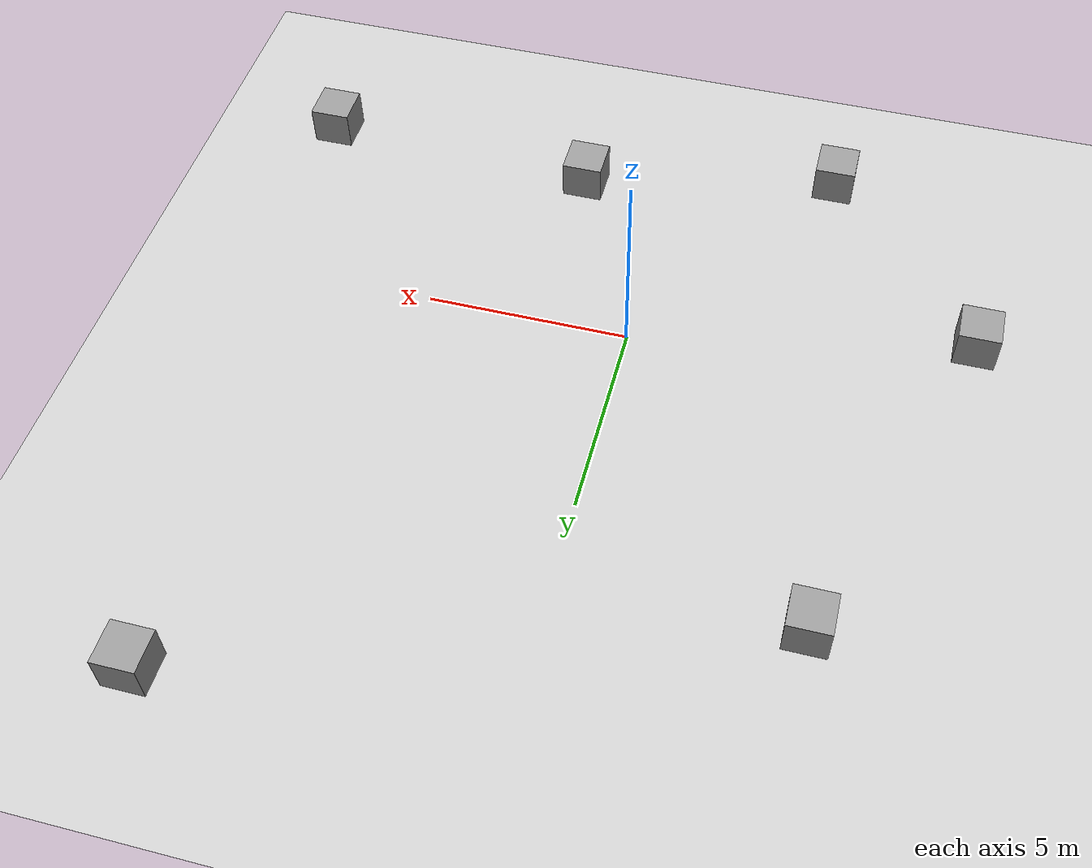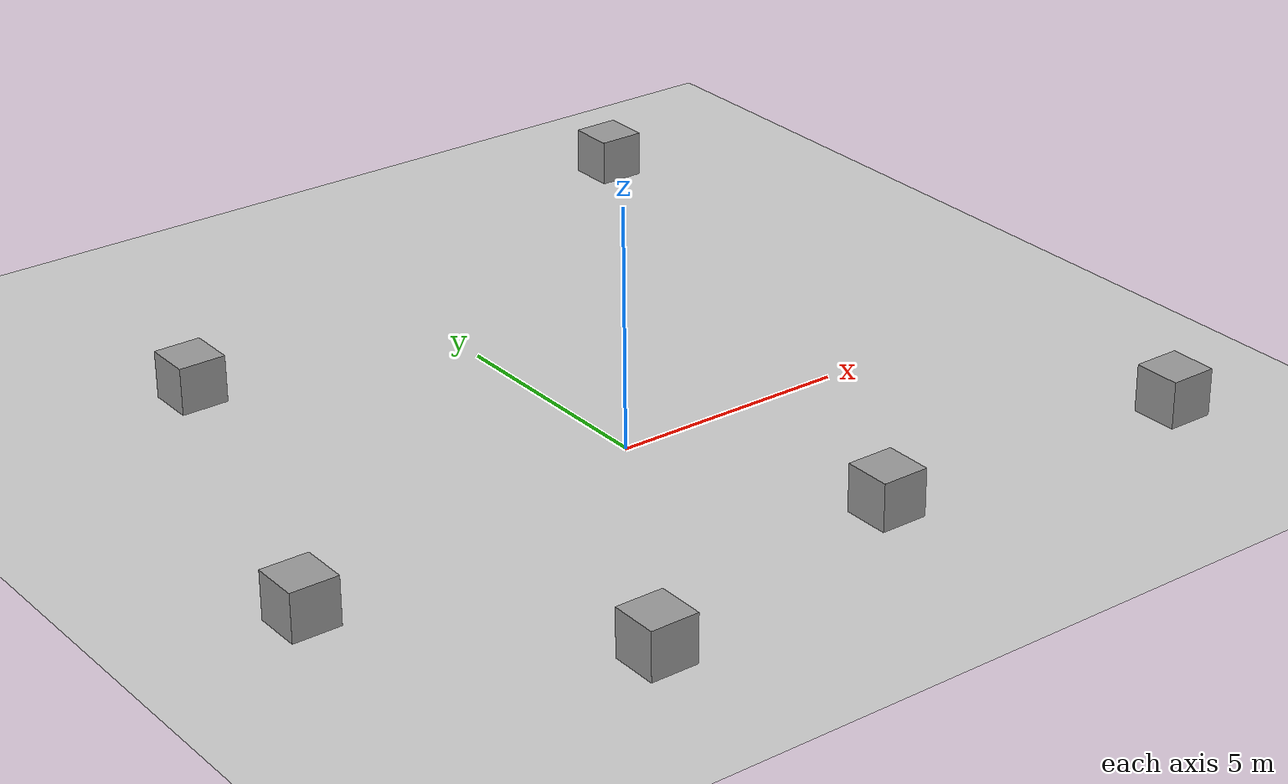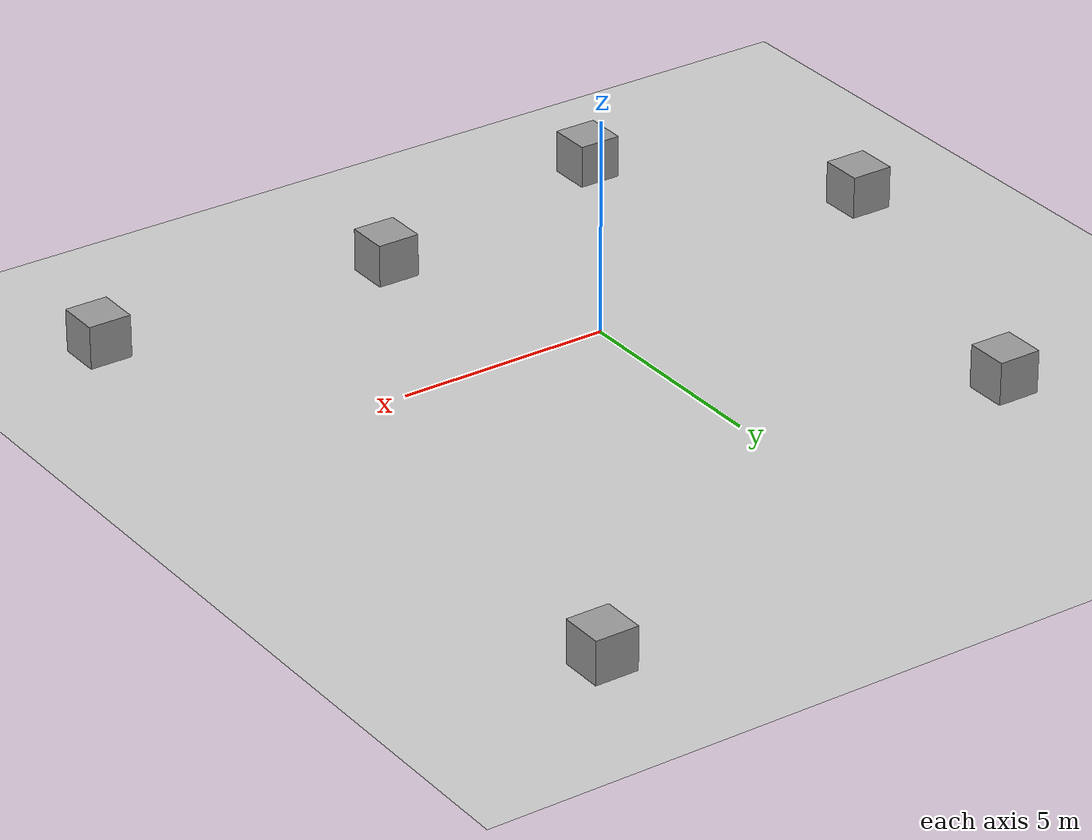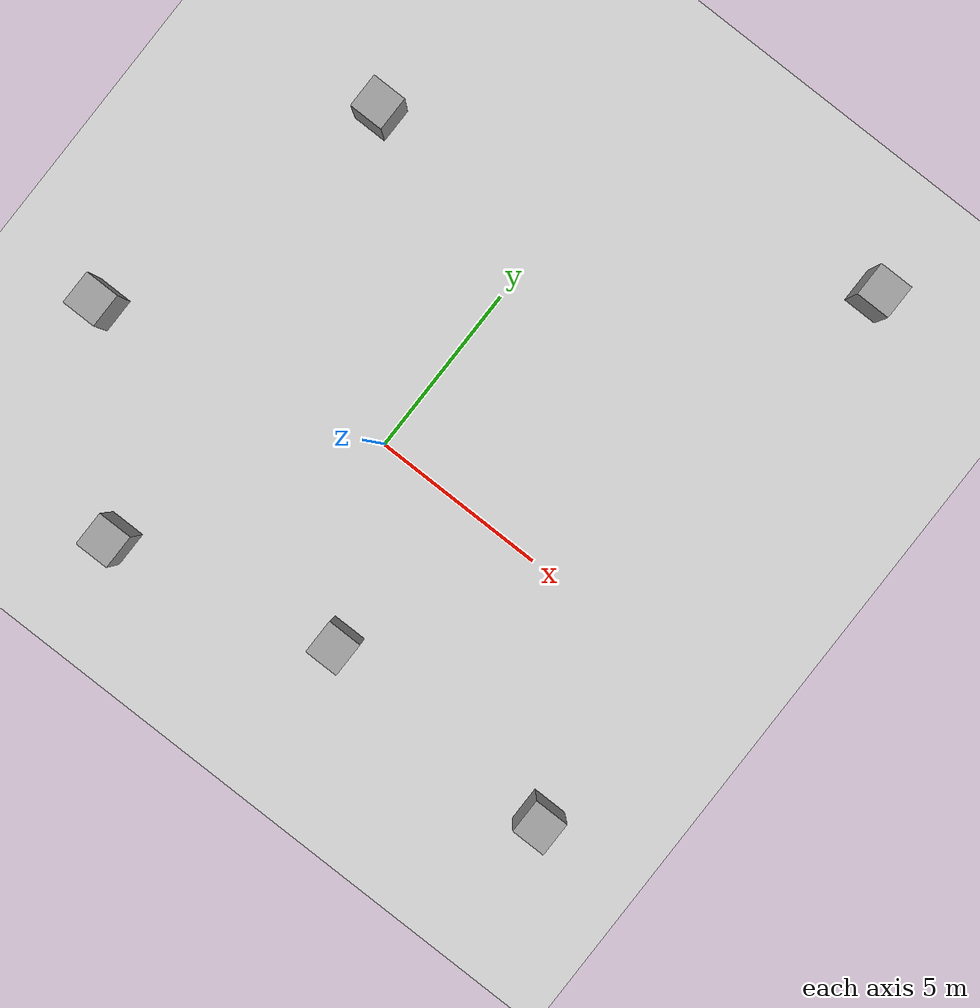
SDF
<sdf version="1.6">
 <world name="robots_colony">
  <model name="ground_plane">
   <static>1</static>
   <link name="link">
    <collision name="collision">
     <geometry><plane><normal>0 0 1</normal><size>100 100</size></plane></geometry>
     <surface>
      <contact><collide_bitmask>65535</collide_bitmask></contact>
      <friction><ode><mu>100</mu><mu2>50</mu2></ode></friction>
     </surface>
    </collision>
    <visual name="visual">
     <cast_shadows>0</cast_shadows>
     <geometry><plane><normal>0 0 1</normal><size>100 100</size></plane></geometry>
     <material>
      <script><uri>file://media/materials/scripts/gazebo.material</uri><name>Gazebo/Grey</name></script>
     </material>
    </visual>
   </link>
  </model>
  <light name="sun" type="directional">
   <pose>0 0 10 0 -0 0</pose>
   <diffuse>0.8 0.8 0.8 1</diffuse>
   <specular>0.2 0.2 0.2 1</specular>
   <attenuation>
    <range>1000</range>
    <constant>0.9</constant>
    <linear>0.01</linear>
    <quadratic>0.001</quadratic>
   </attenuation>
   <direction>-0.5 0.1 -0.9</direction>
  </light>
  <gravity>0 0 -9.8</gravity>
  <magnetic_field>6e-06 2.3e-05 -4.2e-05</magnetic_field>
  <atmosphere type="adiabatic"/>
  <physics name="default_physics" default="0" type="ode">
   <max_step_size>0.001</max_step_size>
   <real_time_factor>1</real_time_factor>
   <real_time_update_rate>1000</real_time_update_rate>
  </physics>
  <scene><ambient>0.4 0.4 0.4 1</ambient><background>0.7 0.7 0.7 1</background><shadows>1</shadows></scene>
  <spherical_coordinates>
   <surface_model>EARTH_WGS84</surface_model>
   <latitude_deg>0</latitude_deg>
   <longitude_deg>0</longitude_deg>
   <elevation>0</elevation>
   <heading_deg>0</heading_deg>
  </spherical_coordinates>
  <model name="unit_box">
   <pose>-4.0926 -6.37064 0.499995 -1e-05 0 0</pose>
   <link name="link">
    <inertial>
     <mass>1</mass>
     <inertia>
      <ixx>0.166667</ixx>
      <ixy>0</ixy>
      <ixz>0</ixz>
      <iyy>0.166667</iyy>
      <iyz>0</iyz>
      <izz>0.166667</izz>
     </inertia>
    </inertial>
    <collision name="collision"><geometry><box><size>1 1 1</size></box></geometry></collision>
    <visual name="visual">
     <geometry><box><size>1 1 1</size></box></geometry>
     <material>
      <script><name>Gazebo/Grey</name><uri>file://media/materials/scripts/gazebo.material</uri></script>
     </material>
    </visual>
   </link>
  </model>
  <model name="unit_box_0">
   <pose>2.27097 -4.90781 0.499995 0 1e-05 0</pose>
   <link name="link">
    <inertial>
     <mass>1</mass>
     <inertia>
      <ixx>0.166667</ixx>
      <ixy>0</ixy>
      <ixz>0</ixz>
      <iyy>0.166667</iyy>
      <iyz>0</iyz>
      <izz>0.166667</izz>
     </inertia>
    </inertial>
    <collision name="collision"><geometry><box><size>1 1 1</size></box></geometry></collision>
    <visual name="visual">
     <geometry><box><size>1 1 1</size></box></geometry>
     <material>
      <script><name>Gazebo/Grey</name><uri>file://media/materials/scripts/gazebo.material</uri></script>
     </material>
    </visual>
   </link>
  </model>
  <model name="unit_box_1">
   <pose>7.75741 11.097 0.499995 -1e-05 0 0</pose>
   <link name="link">
    <inertial>
     <mass>1</mass>
     <inertia>
      <ixx>0.166667</ixx>
      <ixy>0</ixy>
      <ixz>0</ixz>
      <iyy>0.166667</iyy>
      <iyz>0</iyz>
      <izz>0.166667</izz>
     </inertia>
    </inertial>
    <collision name="collision"><geometry><box><size>1 1 1</size></box></geometry></collision>
    <visual name="visual">
     <geometry><box><size>1 1 1</size></box></geometry>
     <material>
      <script><name>Gazebo/Grey</name><uri>file://media/materials/scripts/gazebo.material</uri></script>
     </material>
    </visual>
   </link>
  </model>
  <model name="unit_box_2">
   <pose>-5.49876 6.85922 0.499995 0 1e-05 0</pose>
   <link name="link">
    <inertial>
     <mass>1</mass>
     <inertia>
      <ixx>0.166667</ixx>
      <ixy>0</ixy>
      <ixz>0</ixz>
      <iyy>0.166667</iyy>
      <iyz>0</iyz>
      <izz>0.166667</izz>
     </inertia>
    </inertial>
    <collision name="collision"><geometry><box><size>1 1 1</size></box></geometry></collision>
    <visual name="visual">
     <geometry><box><size>1 1 1</size></box></geometry>
     <material>
      <script><name>Gazebo/Grey</name><uri>file://media/materials/scripts/gazebo.material</uri></script>
     </material>
    </visual>
   </link>
  </model>
  <model name="unit_box_3">
   <pose>-8.18779 -1.68541 0.499995 -1e-05 0 0</pose>
   <link name="link">
    <inertial>
     <mass>1</mass>
     <inertia>
      <ixx>0.166667</ixx>
      <ixy>0</ixy>
      <ixz>0</ixz>
      <iyy>0.166667</iyy>
      <iyz>0</iyz>
      <izz>0.166667</izz>
     </inertia>
    </inertial>
    <collision name="collision"><geometry><box><size>1 1 1</size></box></geometry></collision>
    <visual name="visual">
     <geometry><box><size>1 1 1</size></box></geometry>
     <material>
      <script><name>Gazebo/Grey</name><uri>file://media/materials/scripts/gazebo.material</uri></script>
     </material>
    </visual>
   </link>
  </model>
  <model name="unit_box_4">
   <pose>9.3142 -5.25374 0.5 0 -0 0</pose>
   <link name="link">
    <inertial>
     <mass>1</mass>
     <inertia>
      <ixx>0.166667</ixx>
      <ixy>0</ixy>
      <ixz>0</ixz>
      <iyy>0.166667</iyy>
      <iyz>0</iyz>
      <izz>0.166667</izz>
     </inertia>
    </inertial>
    <collision name="collision"><geometry><box><size>1 1 1</size></box></geometry></collision>
    <visual name="visual">
     <geometry><box><size>1 1 1</size></box></geometry>
     <material>
      <script><name>Gazebo/Grey</name><uri>file://media/materials/scripts/gazebo.material</uri></script>
     </material>
    </visual>
   </link>
  </model>
 </world>
</sdf>
